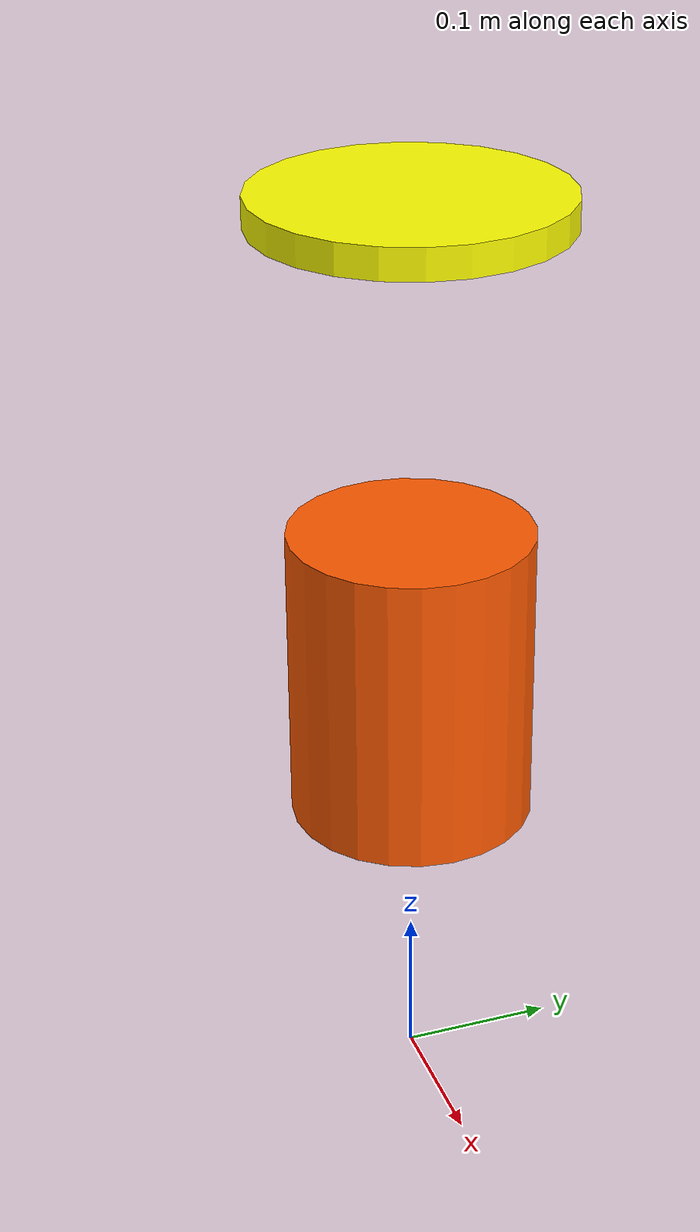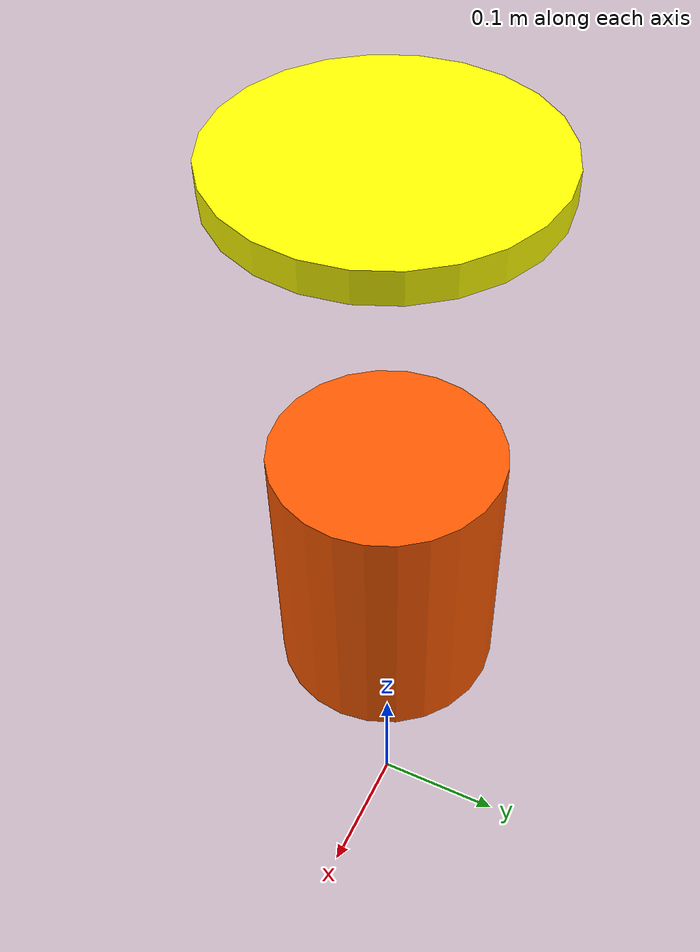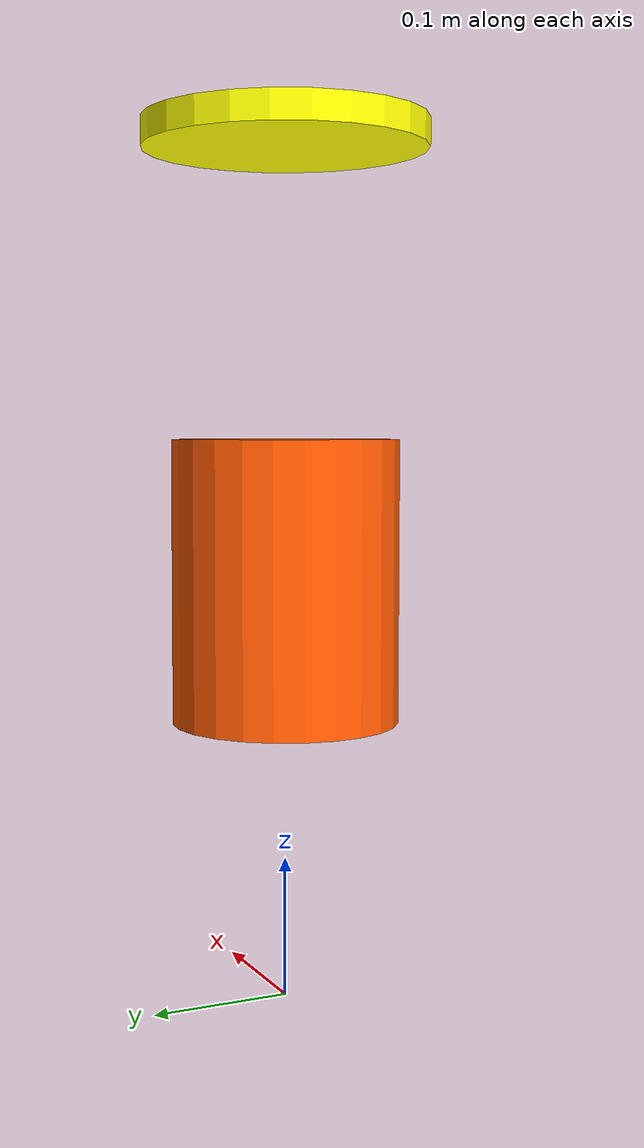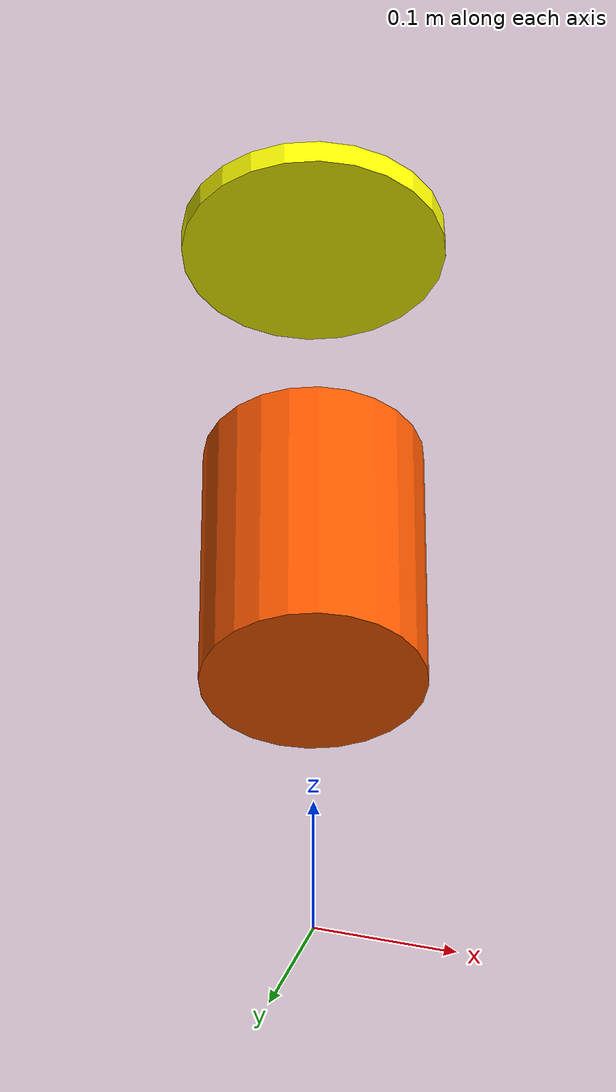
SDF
<?xml version="1.0"?>
<sdf version="1.9">
  <model name="landmark_post">
    <static>true</static>

    <link name="link">
      <pose>0 0 0.3 0 0 0</pose>

      <collision name="collision">
        <geometry>
          <cylinder>
            <radius>0.08</radius>
            <length>0.2</length>
          </cylinder>
        </geometry>
      </collision>

      <visual name="post">
        <geometry>
          <cylinder>
            <radius>0.08</radius>
            <length>0.2</length>
          </cylinder>
        </geometry>
        <material>
          <!-- bright orange: reads clearly against the default grey/white ground -->
          <ambient>1.0 0.35 0.0 1</ambient>
          <diffuse>1.0 0.35 0.0 1</diffuse>
        </material>
      </visual>

      <!-- A brighter cap on top makes the post's position easy to pick out from
           directly overhead (the UAV's own view during patrol), not just from
           the side. -->
      <visual name="cap">
        <pose>0 0 0.31 0 0 0</pose>
        <geometry>
          <cylinder>
            <radius>0.1</radius>
            <length>0.02</length>
          </cylinder>
        </geometry>
        <material>
          <ambient>1.0 1.0 0.0 1</ambient>
          <diffuse>1.0 1.0 0.0 1</diffuse>
        </material>
      </visual>
    </link>
  </model>
</sdf>
